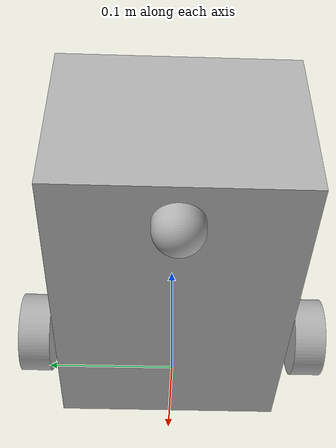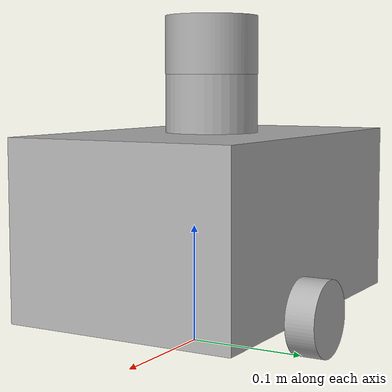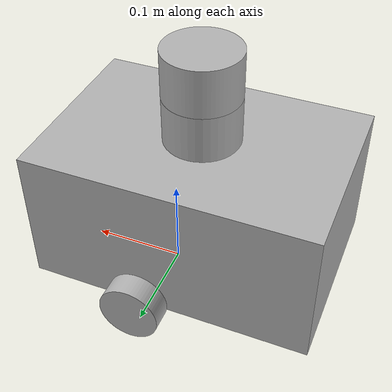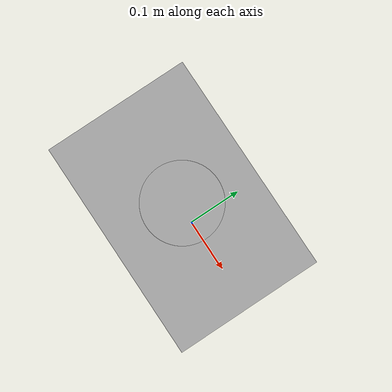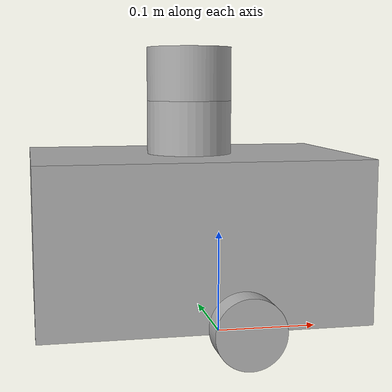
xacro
<?xml version="1.0" ?>
<robot name="simple_robot" xmlns:xacro="http://www.ros.org/wiki/xacro">

<xacro:include filename="$(find simple_robot_description)/urdf/materials.xacro" />
<xacro:include filename="$(find simple_robot_description)/urdf/simple_robot.trans" />
<xacro:include filename="$(find simple_robot_description)/urdf/simple_robot.gazebo" />
<link name="base_link">
  <inertial>
    <origin rpy="0 0 0" xyz="-0.030012739766760527 0.0 0.10574754303132773"/>
    <mass value="9.802244446758406"/>
    <inertia ixx="0.052405" ixy="-0.0" ixz="-9e-06" iyy="0.092165" iyz="0.0" izz="0.103545"/>
  </inertial>
  <visual>
    <origin rpy="0 0 0" xyz="0 0 0"/>
    <geometry>
      <mesh filename="package://simple_robot_description/meshes/base_link.stl" scale="0.001 0.001 0.001"/>
    </geometry>
    <material name="silver"/>
  </visual>
  <collision>
    <origin rpy="0 0 0" xyz="0 0 0"/>
    <geometry>
      <mesh filename="package://simple_robot_description/meshes/base_link.stl" scale="0.001 0.001 0.001"/>
    </geometry>
  </collision>
</link>

<link name="wheeel_left_1">
  <inertial>
    <origin rpy="0 0 0" xyz="0.0 0.012499999999999997 0.0"/>
    <mass value="0.07479503789666579"/>
    <inertia ixx="2.3e-05" ixy="0.0" ixz="0.0" iyy="3.8e-05" iyz="0.0" izz="2.3e-05"/>
  </inertial>
  <visual>
    <origin rpy="0 0 0" xyz="-0.0 -0.1 -0.033"/>
    <geometry>
      <mesh filename="package://simple_robot_description/meshes/wheeel_left_1.stl" scale="0.001 0.001 0.001"/>
    </geometry>
    <material name="silver"/>
  </visual>
  <collision>
    <origin rpy="0 0 0" xyz="-0.0 -0.1 -0.033"/>
    <geometry>
      <mesh filename="package://simple_robot_description/meshes/wheeel_left_1.stl" scale="0.001 0.001 0.001"/>
    </geometry>
  </collision>
</link>

<link name="wheel_right_1">
  <inertial>
    <origin rpy="0 0 0" xyz="0.0 -0.012499999999999997 0.0"/>
    <mass value="0.07479503789666579"/>
    <inertia ixx="2.3e-05" ixy="0.0" ixz="0.0" iyy="3.8e-05" iyz="0.0" izz="2.3e-05"/>
  </inertial>
  <visual>
    <origin rpy="0 0 0" xyz="-0.0 0.1 -0.033"/>
    <geometry>
      <mesh filename="package://simple_robot_description/meshes/wheel_right_1.stl" scale="0.001 0.001 0.001"/>
    </geometry>
    <material name="silver"/>
  </visual>
  <collision>
    <origin rpy="0 0 0" xyz="-0.0 0.1 -0.033"/>
    <geometry>
      <mesh filename="package://simple_robot_description/meshes/wheel_right_1.stl" scale="0.001 0.001 0.001"/>
    </geometry>
  </collision>
</link>

<link name="lidar_1">
  <inertial>
    <origin rpy="0 0 0" xyz="6.591949208711867e-17 9.04691109394067e-18 0.02500000000000005"/>
    <mass value="0.2664070570244145"/>
    <inertia ixx="0.000162" ixy="0.0" ixz="0.0" iyy="0.000162" iyz="0.0" izz="0.000213"/>
  </inertial>
  <visual>
    <origin rpy="0 0 0" xyz="0.03 -0.0 -0.228"/>
    <geometry>
      <mesh filename="package://simple_robot_description/meshes/lidar_1.stl" scale="0.001 0.001 0.001"/>
    </geometry>
    <material name="silver"/>
  </visual>
  <collision>
    <origin rpy="0 0 0" xyz="0.03 -0.0 -0.228"/>
    <geometry>
      <mesh filename="package://simple_robot_description/meshes/lidar_1.stl" scale="0.001 0.001 0.001"/>
    </geometry>
  </collision>
</link>

<link name="caster_wheel_1">
  <inertial>
    <origin rpy="0 0 0" xyz="0.0 -5.561625672504505e-18 -0.010713114754098373"/>
    <mass value="0.027084717464148828"/>
    <inertia ixx="4e-06" ixy="-0.0" ixz="-0.0" iyy="4e-06" iyz="-0.0" izz="5e-06"/>
  </inertial>
  <visual>
    <origin rpy="0 0 0" xyz="0.145 -0.0 -0.028"/>
    <geometry>
      <mesh filename="package://simple_robot_description/meshes/caster_wheel_1.stl" scale="0.001 0.001 0.001"/>
    </geometry>
    <material name="silver"/>
  </visual>
  <collision>
    <origin rpy="0 0 0" xyz="0.145 -0.0 -0.028"/>
    <geometry>
      <mesh filename="package://simple_robot_description/meshes/caster_wheel_1.stl" scale="0.001 0.001 0.001"/>
    </geometry>
  </collision>
</link>

<joint name="Rev1" type="continuous">
  <origin rpy="0 0 0" xyz="0.0 0.1 0.033"/>
  <parent link="base_link"/>
  <child link="wheeel_left_1"/>
  <axis xyz="0.0 1.0 0.0"/>
</joint>

<joint name="Rev2" type="continuous">
  <origin rpy="0 0 0" xyz="0.0 -0.1 0.033"/>
  <parent link="base_link"/>
  <child link="wheel_right_1"/>
  <axis xyz="0.0 1.0 0.0"/>
</joint>

<joint name="Rigid3" type="fixed">
  <origin rpy="0 0 0" xyz="-0.03 0.0 0.228"/>
  <parent link="base_link"/>
  <child link="lidar_1"/>
</joint>

<joint name="Rigid4" type="fixed">
  <origin rpy="0 0 0" xyz="-0.145 0.0 0.028"/>
  <parent link="base_link"/>
  <child link="caster_wheel_1"/>
</joint>

</robot>

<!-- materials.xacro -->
<robot name="simple_robot" xmlns:xacro="http://www.ros.org/wiki/xacro" >

<material name="silver">
  <color rgba="0.700 0.700 0.700 1.000"/>
</material>

</robot>

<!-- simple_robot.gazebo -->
<robot name="simple_robot" xmlns:xacro="http://www.ros.org/wiki/xacro" >

<xacro:property name="body_color" value="Gazebo/Silver" />

<gazebo>
  <plugin filename="libgazebo_ros_control.so" name="control"/>
</gazebo>
<gazebo reference="base_link">
  <material>${body_color}</material>
  <mu1>0.2</mu1>
  <mu2>0.2</mu2>
  <selfCollide>true</selfCollide>
  <gravity>true</gravity>
</gazebo>

<gazebo reference="wheeel_left_1">
  <material>${body_color}</material>
  <mu1>0.2</mu1>
  <mu2>0.2</mu2>
  <selfCollide>true</selfCollide>
</gazebo>

<gazebo reference="wheel_right_1">
  <material>${body_color}</material>
  <mu1>0.2</mu1>
  <mu2>0.2</mu2>
  <selfCollide>true</selfCollide>
</gazebo>

<gazebo reference="lidar_1">
  <material>${body_color}</material>
  <mu1>0.2</mu1>
  <mu2>0.2</mu2>
  <selfCollide>true</selfCollide>
</gazebo>

<gazebo reference="caster_wheel_1">
  <material>${body_color}</material>
  <mu1>0.2</mu1>
  <mu2>0.2</mu2>
  <selfCollide>true</selfCollide>
</gazebo>

</robot>
